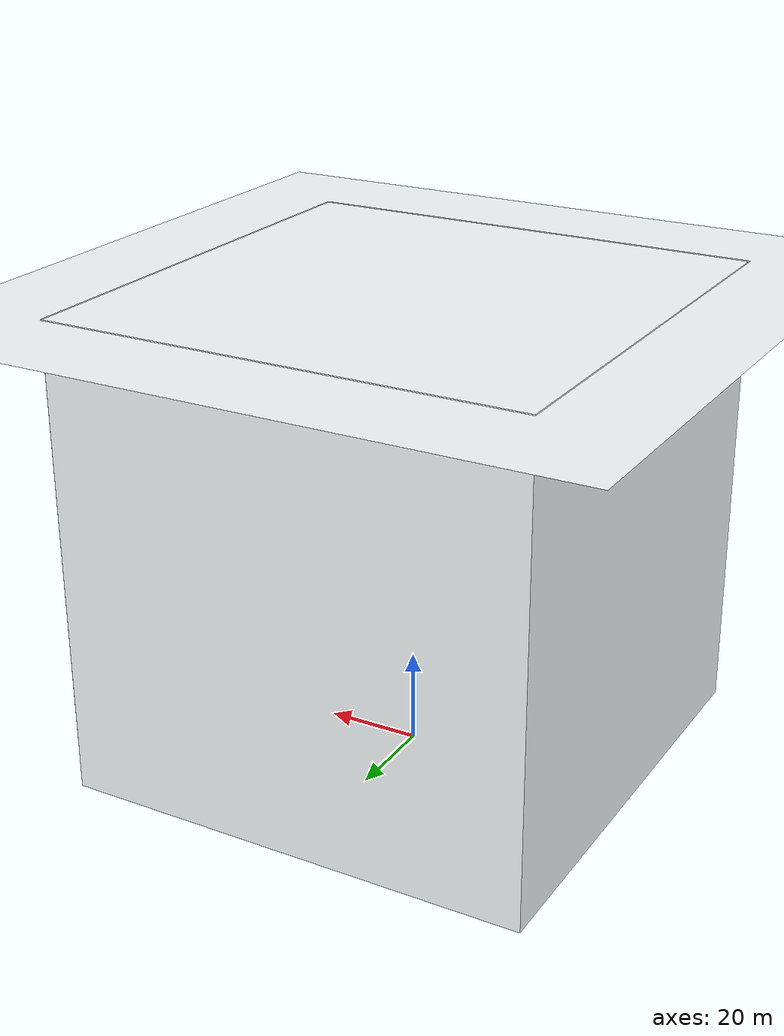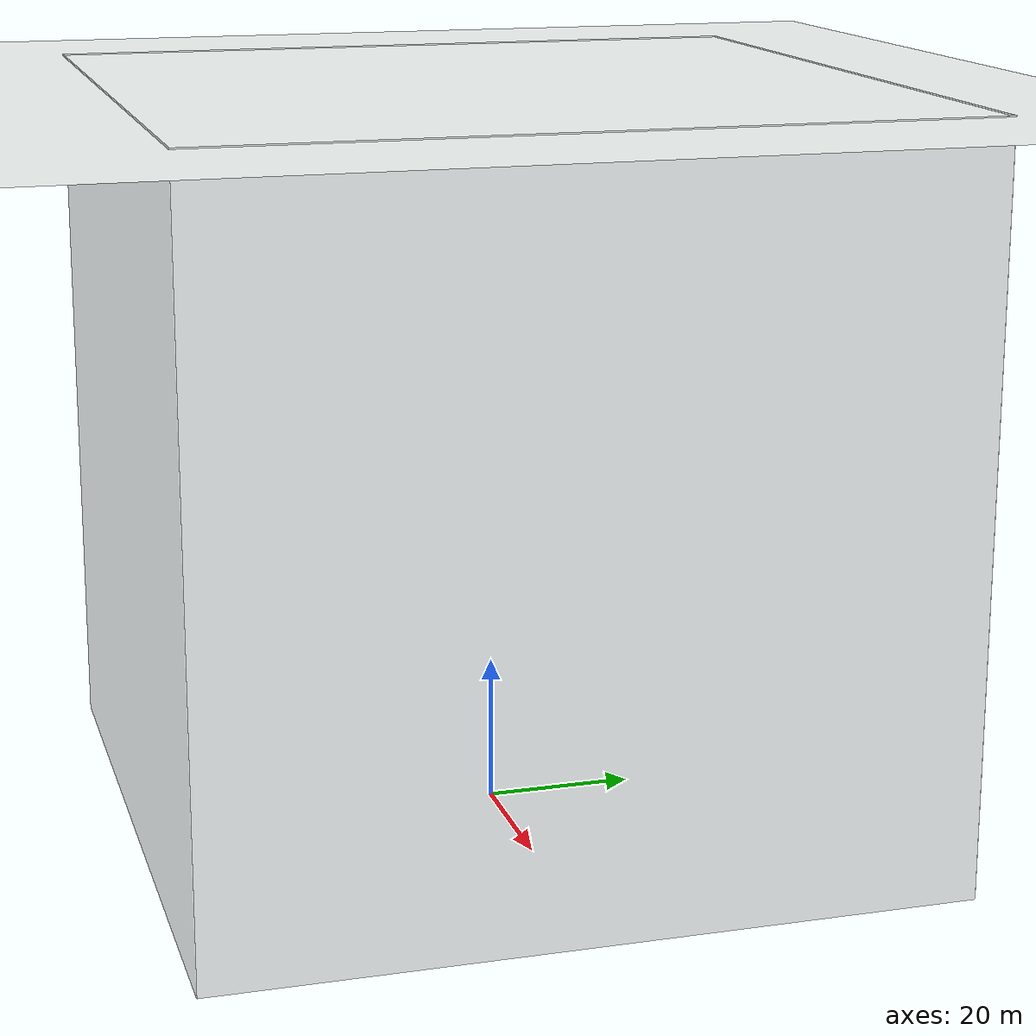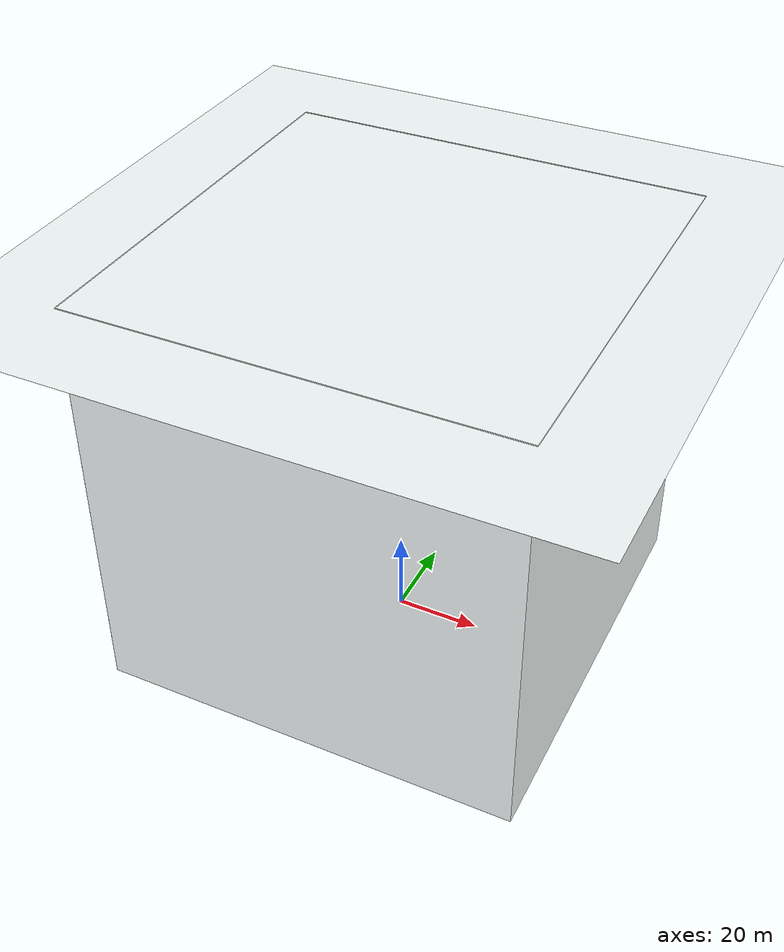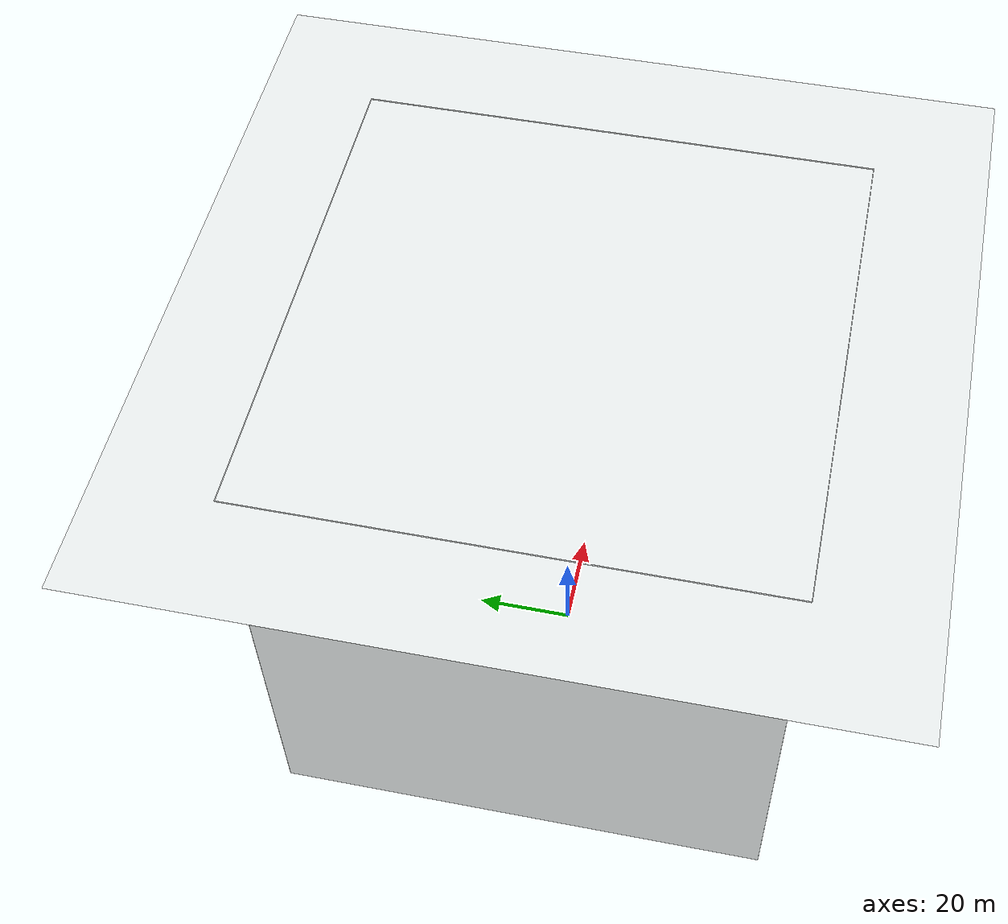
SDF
<sdf version="1.5">
 <world name="default">
  <include><uri>model://sun</uri></include>
  <physics name="default_physics" default="0" type="ode">
   <max_step_size>0.001</max_step_size>
   <real_time_factor>1</real_time_factor>
   <real_time_update_rate>1000</real_time_update_rate>
   <ode>
    <solver>
     <type>quick</type>
     <iters>50</iters>
     <sor>1.0</sor>
     <use_dynamic_moi_rescaling>false</use_dynamic_moi_rescaling>
    </solver>
   </ode>
  </physics>
  <model name="ground_plane_zero_friction">
   <static>true</static>
   <link name="plane">
    <collision name="plane_collision">
     <geometry><plane><normal>0 0 1</normal><size>1000 1000</size></plane></geometry>
     <surface><friction><ode><mu>0.05</mu><mu2>0.05</mu2></ode></friction></surface>
    </collision>
   </link>
  </model>
  <model name="big box">
   <static>true</static>
   <link name="link ceiling">
    <visual name="visual ceiling">
     <pose>0 0 100 0 0 0</pose>
     <transparency>0.5</transparency>
     <geometry><plane><normal>0 0 1</normal><size>100 100</size></plane></geometry>
    </visual>
   </link>
   <link name="link front_wall">
    <visual name="visual front_wall">
     <pose>50 0 50 0 -1.5708 0</pose>
     <transparency>0.5</transparency>
     <geometry><plane><normal>0 0 0</normal><size>100 100</size></plane></geometry>
    </visual>
   </link>
   <link name="link left_wall">
    <visual name="visual left_wall">
     <pose>0 50 50 -1.5708 0 0</pose>
     <transparency>0.5</transparency>
     <geometry><plane><normal>0 0 0</normal><size>100 100</size></plane></geometry>
    </visual>
   </link>
   <link name="link right_wall">
    <visual name="visual right_wall">
     <pose>0 -50 50 -1.5708 0 0</pose>
     <transparency>0.5</transparency>
     <geometry><plane><normal>0 0 0</normal><size>100 100</size></plane></geometry>
    </visual>
   </link>
   <link name="link back_wall">
    <visual name="visual back_wall">
     <pose>-50 0 50 0 -1.5708 0</pose>
     <transparency>0.5</transparency>
     <geometry><plane><normal>0 0 0</normal><size>100 100</size></plane></geometry>
    </visual>
   </link>
  </model>
 </world>
</sdf>
